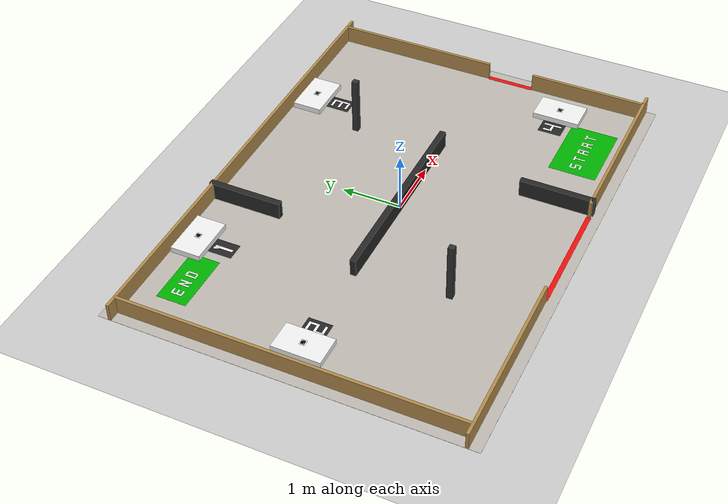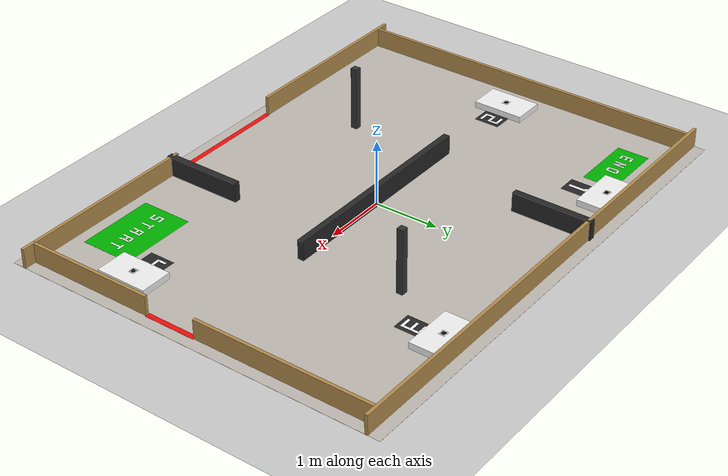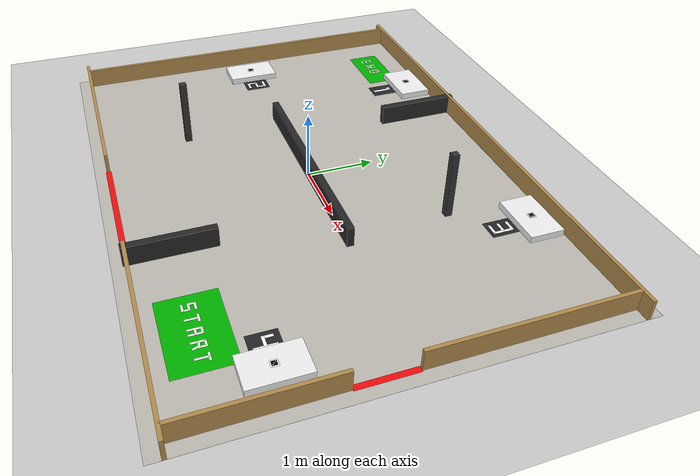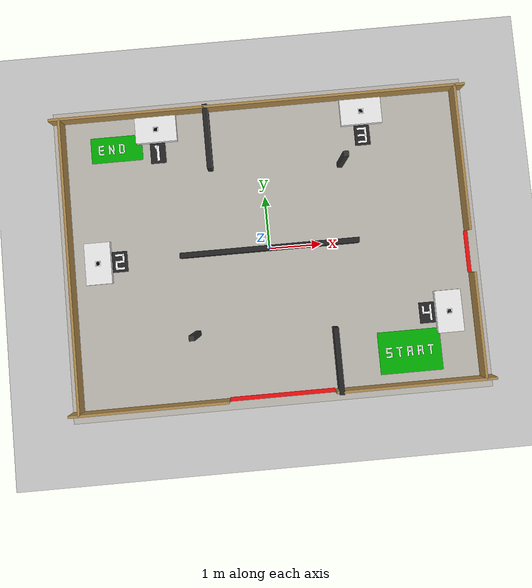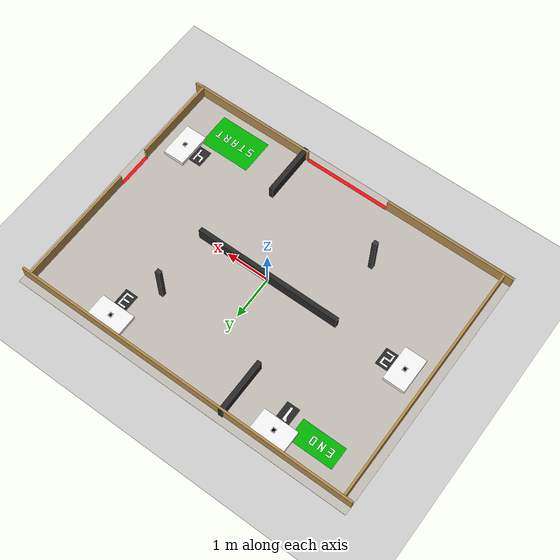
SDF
<?xml version="1.0" ?>
<sdf version="1.6">
  <world name="robocup_arena_mapping">

    <physics type="ode">
      <max_step_size>0.001</max_step_size>
      <real_time_factor>1</real_time_factor>
    </physics>

    <include><uri>model://sun</uri></include>
    <include><uri>model://ground_plane</uri></include>

    <!-- ===== FLOOR (8m x 6m) ===== -->
    <model name="arena_floor">
      <static>true</static>
      <pose>0 0 0.001 0 0 0</pose>
      <link name="link">
        <visual name="v"><geometry><box><size>8 6 0.002</size></box></geometry>
          <material><ambient>0.75 0.73 0.70 1</ambient><diffuse>0.75 0.73 0.70 1</diffuse></material>
        </visual>
      </link>
    </model>

    <!-- ===== OUTER WALLS (30cm high, 5cm thick) ===== -->
    <!-- Arena interior: x=[-3.775, 3.775], y=[-2.775, 2.775] -->

    <!-- North wall - full, y=2.8 -->
    <model name="wall_north">
      <static>true</static>
      <pose>0 2.8 0.15 0 0 0</pose>
      <link name="link">
        <collision name="c"><geometry><box><size>8 0.05 0.3</size></box></geometry></collision>
        <visual name="v"><geometry><box><size>8 0.05 0.3</size></box></geometry>
          <material><ambient>0.7 0.55 0.3 1</ambient><diffuse>0.7 0.55 0.3 1</diffuse></material>
        </visual>
      </link>
    </model>

    <!-- South wall - LEFT section (x=[-4.0, -1.0]) -->
    <model name="wall_south_left">
      <static>true</static>
      <pose>-2.5 -2.8 0.15 0 0 0</pose>
      <link name="link">
        <collision name="c"><geometry><box><size>3 0.05 0.3</size></box></geometry></collision>
        <visual name="v"><geometry><box><size>3 0.05 0.3</size></box></geometry>
          <material><ambient>0.7 0.55 0.3 1</ambient><diffuse>0.7 0.55 0.3 1</diffuse></material>
        </visual>
      </link>
    </model>

    <!-- South wall - RIGHT section (x=[1.0, 4.0]) -->
    <model name="wall_south_right">
      <static>true</static>
      <pose>2.5 -2.8 0.15 0 0 0</pose>
      <link name="link">
        <collision name="c"><geometry><box><size>3 0.05 0.3</size></box></geometry></collision>
        <visual name="v"><geometry><box><size>3 0.05 0.3</size></box></geometry>
          <material><ambient>0.7 0.55 0.3 1</ambient><diffuse>0.7 0.55 0.3 1</diffuse></material>
        </visual>
      </link>
    </model>

    <!-- Red tape marking south entry gap (visual only) -->
    <model name="red_tape_south">
      <static>true</static>
      <pose>0 -2.8 0.003 0 0 0</pose>
      <link name="link">
        <visual name="v"><geometry><box><size>2 0.08 0.003</size></box></geometry>
          <material><ambient>0.95 0.05 0.05 1</ambient><diffuse>0.95 0.05 0.05 1</diffuse></material>
        </visual>
      </link>
    </model>

    <!-- East wall - TOP section (y=[0.0, 2.8]) -->
    <model name="wall_east_top">
      <static>true</static>
      <pose>3.8 1.4 0.15 0 0 0</pose>
      <link name="link">
        <collision name="c"><geometry><box><size>0.05 2.8 0.3</size></box></geometry></collision>
        <visual name="v"><geometry><box><size>0.05 2.8 0.3</size></box></geometry>
          <material><ambient>0.7 0.55 0.3 1</ambient><diffuse>0.7 0.55 0.3 1</diffuse></material>
        </visual>
      </link>
    </model>

    <!-- East wall - BOTTOM section (y=[-2.8, -0.8]) -->
    <model name="wall_east_bottom">
      <static>true</static>
      <pose>3.8 -1.8 0.15 0 0 0</pose>
      <link name="link">
        <collision name="c"><geometry><box><size>0.05 2.0 0.3</size></box></geometry></collision>
        <visual name="v"><geometry><box><size>0.05 2.0 0.3</size></box></geometry>
          <material><ambient>0.7 0.55 0.3 1</ambient><diffuse>0.7 0.55 0.3 1</diffuse></material>
        </visual>
      </link>
    </model>

    <!-- Red tape marking east entry gap (visual only) -->
    <model name="red_tape_east">
      <static>true</static>
      <pose>3.8 -0.4 0.003 0 0 1.57</pose>
      <link name="link">
        <visual name="v"><geometry><box><size>0.8 0.08 0.003</size></box></geometry>
          <material><ambient>0.95 0.05 0.05 1</ambient><diffuse>0.95 0.05 0.05 1</diffuse></material>
        </visual>
      </link>
    </model>

    <!-- West wall - full, x=-3.8 -->
    <model name="wall_west">
      <static>true</static>
      <pose>-3.8 0 0.15 0 0 0</pose>
      <link name="link">
        <collision name="c"><geometry><box><size>0.05 5.6 0.3</size></box></geometry></collision>
        <visual name="v"><geometry><box><size>0.05 5.6 0.3</size></box></geometry>
          <material><ambient>0.7 0.55 0.3 1</ambient><diffuse>0.7 0.55 0.3 1</diffuse></material>
        </visual>
      </link>
    </model>

    <!-- ===== INNER WALLS - CENTRAL ISLAND LOOP =====
         Island wall at y=0 with a loop around it, plus two chicane stubs.
         All gaps are >= 1.26 m (robot + inflation). -->

    <model name="iwall_island">
      <static>true</static>
      <pose>0 0 0.15 0 0 0</pose>
      <link name="link">
        <collision name="c"><geometry><box><size>3.4 0.10 0.3</size></box></geometry></collision>
        <visual name="v"><geometry><box><size>3.4 0.10 0.3</size></box></geometry>
          <material><ambient>0.15 0.15 0.15 1</ambient><diffuse>0.15 0.15 0.15 1</diffuse></material>
        </visual>
      </link>
    </model>

    <model name="iwall_stub_n">
      <static>true</static>
      <pose>-1.0 2.225 0.15 0 0 0</pose>
      <link name="link">
        <collision name="c"><geometry><box><size>0.10 1.25 0.3</size></box></geometry></collision>
        <visual name="v"><geometry><box><size>0.10 1.25 0.3</size></box></geometry>
          <material><ambient>0.15 0.15 0.15 1</ambient><diffuse>0.15 0.15 0.15 1</diffuse></material>
        </visual>
      </link>
    </model>

    <model name="iwall_stub_s">
      <static>true</static>
      <pose>1.1 -2.225 0.15 0 0 0</pose>
      <link name="link">
        <collision name="c"><geometry><box><size>0.10 1.25 0.3</size></box></geometry></collision>
        <visual name="v"><geometry><box><size>0.10 1.25 0.3</size></box></geometry>
          <material><ambient>0.15 0.15 0.15 1</ambient><diffuse>0.15 0.15 0.15 1</diffuse></material>
        </visual>
      </link>
    </model>

    <!-- ===== WORKSTATION TABLES =====
         Against the outer walls, 0.1 m high. -->

    <!-- WS01 - against NORTH wall, left zone (north zone, west side) -->
    <!-- Approach from south: y < 2.25 (1.5m clearance from Wall A north face at y=0.75) -->
    <model name="table_ws01">
      <static>true</static>
      <pose>-2.0 2.5 0.05 0 0 0</pose>
      <link name="link">
        <collision name="c"><geometry><box><size>0.8 0.5 0.1</size></box></geometry></collision>
        <visual name="v"><geometry><box><size>0.8 0.5 0.1</size></box></geometry>
          <material><ambient>0.95 0.95 0.95 1</ambient><diffuse>0.95 0.95 0.95 1</diffuse></material>
        </visual>
      </link>
    </model>

    <!-- WS02 - against WEST wall, center zone (center zone, accessible via west gap of wall B) -->
    <!-- Approach from east: x > -3.05 -->
    <model name="table_ws02">
      <static>true</static>
      <pose>-3.3 0.0 0.05 0 0 0</pose>
      <link name="link">
        <collision name="c"><geometry><box><size>0.5 0.8 0.1</size></box></geometry></collision>
        <visual name="v"><geometry><box><size>0.5 0.8 0.1</size></box></geometry>
          <material><ambient>0.95 0.95 0.95 1</ambient><diffuse>0.95 0.95 0.95 1</diffuse></material>
        </visual>
      </link>
    </model>

    <!-- WS03 - against NORTH wall, right zone (north zone, east side, easiest access) -->
    <!-- Approach from south: direct access via east gap of wall A -->
    <model name="table_ws03">
      <static>true</static>
      <pose>2.0 2.5 0.05 0 0 0</pose>
      <link name="link">
        <collision name="c"><geometry><box><size>0.8 0.5 0.1</size></box></geometry></collision>
        <visual name="v"><geometry><box><size>0.8 0.5 0.1</size></box></geometry>
          <material><ambient>0.95 0.95 0.95 1</ambient><diffuse>0.95 0.95 0.95 1</diffuse></material>
        </visual>
      </link>
    </model>

    <!-- WS04 - against EAST wall, south zone (south zone east side, direct from start) -->
    <!-- Approach from west: x < 3.05 -->
    <model name="table_ws04">
      <static>true</static>
      <pose>3.3 -1.5 0.05 0 0 0</pose>
      <link name="link">
        <collision name="c"><geometry><box><size>0.5 0.8 0.1</size></box></geometry></collision>
        <visual name="v"><geometry><box><size>0.5 0.8 0.1</size></box></geometry>
          <material><ambient>0.95 0.95 0.95 1</ambient><diffuse>0.95 0.95 0.95 1</diffuse></material>
        </visual>
      </link>
    </model>

    <!-- ===== SLAM FEATURE PILLARS (thin, axis-aligned, help SLAM close loops) ===== -->
    <model name="pillar1">
      <static>true</static>
      <pose>-1.5 -1.5 0.5 0 0 0</pose>
      <link name="l">
        <collision name="c"><geometry><box><size>0.1 0.1 1.0</size></box></geometry></collision>
        <visual name="v"><geometry><box><size>0.1 0.1 1.0</size></box></geometry>
          <material><ambient>0.2 0.2 0.2 1</ambient><diffuse>0.2 0.2 0.2 1</diffuse></material>
        </visual>
      </link>
    </model>
    <model name="pillar2">
      <static>true</static>
      <pose>1.5 1.5 0.5 0 0 0</pose>
      <link name="l">
        <collision name="c"><geometry><box><size>0.1 0.1 1.0</size></box></geometry></collision>
        <visual name="v"><geometry><box><size>0.1 0.1 1.0</size></box></geometry>
          <material><ambient>0.2 0.2 0.2 1</ambient><diffuse>0.2 0.2 0.2 1</diffuse></material>
        </visual>
      </link>
    </model>

    <!-- ===== APRILTAGS ON TABLES (camera detection markers) ===== -->
    <!-- AprilTag WS01 - Tag ID 0 -->
    <model name="apriltag_ws01">
      <static>true</static>
      <pose>-2.0 2.5 0.105 0 0 0</pose>
      <link name="link">
        <visual name="border"><geometry><box><size>0.10 0.10 0.002</size></box></geometry>
          <material><ambient>1 1 1 1</ambient><diffuse>1 1 1 1</diffuse></material></visual>
        <visual name="inner"><pose>0 0 0.001 0 0 0</pose>
          <geometry><box><size>0.07 0.07 0.001</size></box></geometry>
          <material><ambient>0 0 0 1</ambient><diffuse>0 0 0 1</diffuse></material></visual>
        <visual name="code1"><pose>-0.02 0.02 0.002 0 0 0</pose>
          <geometry><box><size>0.012 0.012 0.001</size></box></geometry>
          <material><ambient>1 1 1 1</ambient><diffuse>1 1 1 1</diffuse></material></visual>
      </link>
    </model>

    <!-- AprilTag WS02 - Tag ID 1 -->
    <model name="apriltag_ws02">
      <static>true</static>
      <pose>-3.3 0.0 0.105 0 0 0</pose>
      <link name="link">
        <visual name="border"><geometry><box><size>0.10 0.10 0.002</size></box></geometry>
          <material><ambient>1 1 1 1</ambient><diffuse>1 1 1 1</diffuse></material></visual>
        <visual name="inner"><pose>0 0 0.001 0 0 0</pose>
          <geometry><box><size>0.07 0.07 0.001</size></box></geometry>
          <material><ambient>0 0 0 1</ambient><diffuse>0 0 0 1</diffuse></material></visual>
        <visual name="code1"><pose>0.02 0.02 0.002 0 0 0</pose>
          <geometry><box><size>0.012 0.012 0.001</size></box></geometry>
          <material><ambient>1 1 1 1</ambient><diffuse>1 1 1 1</diffuse></material></visual>
        <visual name="code2"><pose>-0.02 -0.02 0.002 0 0 0</pose>
          <geometry><box><size>0.012 0.012 0.001</size></box></geometry>
          <material><ambient>1 1 1 1</ambient><diffuse>1 1 1 1</diffuse></material></visual>
      </link>
    </model>

    <!-- AprilTag WS03 - Tag ID 2 -->
    <model name="apriltag_ws03">
      <static>true</static>
      <pose>2.0 2.5 0.105 0 0 0</pose>
      <link name="link">
        <visual name="border"><geometry><box><size>0.10 0.10 0.002</size></box></geometry>
          <material><ambient>1 1 1 1</ambient><diffuse>1 1 1 1</diffuse></material></visual>
        <visual name="inner"><pose>0 0 0.001 0 0 0</pose>
          <geometry><box><size>0.07 0.07 0.001</size></box></geometry>
          <material><ambient>0 0 0 1</ambient><diffuse>0 0 0 1</diffuse></material></visual>
        <visual name="code1"><pose>-0.02 -0.02 0.002 0 0 0</pose>
          <geometry><box><size>0.012 0.012 0.001</size></box></geometry>
          <material><ambient>1 1 1 1</ambient><diffuse>1 1 1 1</diffuse></material></visual>
        <visual name="code2"><pose>0.02 0.02 0.002 0 0 0</pose>
          <geometry><box><size>0.012 0.012 0.001</size></box></geometry>
          <material><ambient>1 1 1 1</ambient><diffuse>1 1 1 1</diffuse></material></visual>
        <visual name="code3"><pose>0.02 -0.02 0.002 0 0 0</pose>
          <geometry><box><size>0.012 0.012 0.001</size></box></geometry>
          <material><ambient>1 1 1 1</ambient><diffuse>1 1 1 1</diffuse></material></visual>
      </link>
    </model>

    <!-- AprilTag WS04 - Tag ID 3 -->
    <model name="apriltag_ws04">
      <static>true</static>
      <pose>3.3 -1.5 0.105 0 0 0</pose>
      <link name="link">
        <visual name="border"><geometry><box><size>0.10 0.10 0.002</size></box></geometry>
          <material><ambient>1 1 1 1</ambient><diffuse>1 1 1 1</diffuse></material></visual>
        <visual name="inner"><pose>0 0 0.001 0 0 0</pose>
          <geometry><box><size>0.07 0.07 0.001</size></box></geometry>
          <material><ambient>0 0 0 1</ambient><diffuse>0 0 0 1</diffuse></material></visual>
        <visual name="code1"><pose>0.02 -0.02 0.002 0 0 0</pose>
          <geometry><box><size>0.012 0.012 0.001</size></box></geometry>
          <material><ambient>1 1 1 1</ambient><diffuse>1 1 1 1</diffuse></material></visual>
        <visual name="code2"><pose>-0.02 0.02 0.002 0 0 0</pose>
          <geometry><box><size>0.012 0.012 0.001</size></box></geometry>
          <material><ambient>1 1 1 1</ambient><diffuse>1 1 1 1</diffuse></material></visual>
        <visual name="code3"><pose>0.0 0.0 0.002 0 0 0</pose>
          <geometry><box><size>0.012 0.012 0.001</size></box></geometry>
          <material><ambient>1 1 1 1</ambient><diffuse>1 1 1 1</diffuse></material></visual>
      </link>
    </model>

    <!-- ===== FLOOR STATION NUMBERS ===== -->
    <!-- Number 1 near WS01 -->
    <model name="num1">
      <static>true</static>
      <pose>-2.0 2.05 0.003 0 0 0</pose>
      <link name="link">
        <visual name="bg"><geometry><box><size>0.3 0.4 0.002</size></box></geometry>
          <material><ambient>0.15 0.15 0.15 1</ambient><diffuse>0.15 0.15 0.15 1</diffuse></material></visual>
        <visual name="v1"><pose>0 0 0.001 0 0 0</pose>
          <geometry><box><size>0.05 0.3 0.001</size></box></geometry>
          <material><ambient>1 1 1 1</ambient><diffuse>1 1 1 1</diffuse></material></visual>
        <visual name="v2"><pose>-0.03 0.12 0.001 0 0 0.5</pose>
          <geometry><box><size>0.05 0.08 0.001</size></box></geometry>
          <material><ambient>1 1 1 1</ambient><diffuse>1 1 1 1</diffuse></material></visual>
      </link>
    </model>

    <!-- Number 2 near WS02 -->
    <model name="num2">
      <static>true</static>
      <pose>-2.9 0.0 0.003 0 0 0</pose>
      <link name="link">
        <visual name="bg"><geometry><box><size>0.3 0.4 0.002</size></box></geometry>
          <material><ambient>0.15 0.15 0.15 1</ambient><diffuse>0.15 0.15 0.15 1</diffuse></material></visual>
        <visual name="top"><pose>0 0.13 0.001 0 0 0</pose>
          <geometry><box><size>0.18 0.04 0.001</size></box></geometry>
          <material><ambient>1 1 1 1</ambient><diffuse>1 1 1 1</diffuse></material></visual>
        <visual name="mid"><pose>0 0 0.001 0 0 0</pose>
          <geometry><box><size>0.18 0.04 0.001</size></box></geometry>
          <material><ambient>1 1 1 1</ambient><diffuse>1 1 1 1</diffuse></material></visual>
        <visual name="bot"><pose>0 -0.13 0.001 0 0 0</pose>
          <geometry><box><size>0.18 0.04 0.001</size></box></geometry>
          <material><ambient>1 1 1 1</ambient><diffuse>1 1 1 1</diffuse></material></visual>
        <visual name="rt"><pose>0.07 0.065 0.001 0 0 0</pose>
          <geometry><box><size>0.04 0.13 0.001</size></box></geometry>
          <material><ambient>1 1 1 1</ambient><diffuse>1 1 1 1</diffuse></material></visual>
        <visual name="lb"><pose>-0.07 -0.065 0.001 0 0 0</pose>
          <geometry><box><size>0.04 0.13 0.001</size></box></geometry>
          <material><ambient>1 1 1 1</ambient><diffuse>1 1 1 1</diffuse></material></visual>
      </link>
    </model>

    <!-- Number 3 near WS03 -->
    <model name="num3">
      <static>true</static>
      <pose>2.0 2.05 0.003 0 0 0</pose>
      <link name="link">
        <visual name="bg"><geometry><box><size>0.3 0.4 0.002</size></box></geometry>
          <material><ambient>0.15 0.15 0.15 1</ambient><diffuse>0.15 0.15 0.15 1</diffuse></material></visual>
        <visual name="top"><pose>0 0.13 0.001 0 0 0</pose>
          <geometry><box><size>0.18 0.04 0.001</size></box></geometry>
          <material><ambient>1 1 1 1</ambient><diffuse>1 1 1 1</diffuse></material></visual>
        <visual name="mid"><pose>0 0 0.001 0 0 0</pose>
          <geometry><box><size>0.18 0.04 0.001</size></box></geometry>
          <material><ambient>1 1 1 1</ambient><diffuse>1 1 1 1</diffuse></material></visual>
        <visual name="bot"><pose>0 -0.13 0.001 0 0 0</pose>
          <geometry><box><size>0.18 0.04 0.001</size></box></geometry>
          <material><ambient>1 1 1 1</ambient><diffuse>1 1 1 1</diffuse></material></visual>
        <visual name="rt"><pose>0.07 0.065 0.001 0 0 0</pose>
          <geometry><box><size>0.04 0.13 0.001</size></box></geometry>
          <material><ambient>1 1 1 1</ambient><diffuse>1 1 1 1</diffuse></material></visual>
        <visual name="rb"><pose>0.07 -0.065 0.001 0 0 0</pose>
          <geometry><box><size>0.04 0.13 0.001</size></box></geometry>
          <material><ambient>1 1 1 1</ambient><diffuse>1 1 1 1</diffuse></material></visual>
      </link>
    </model>

    <!-- Number 4 near WS04 -->
    <model name="num4">
      <static>true</static>
      <pose>2.9 -1.5 0.003 0 0 0</pose>
      <link name="link">
        <visual name="bg"><geometry><box><size>0.3 0.4 0.002</size></box></geometry>
          <material><ambient>0.15 0.15 0.15 1</ambient><diffuse>0.15 0.15 0.15 1</diffuse></material></visual>
        <visual name="lt"><pose>-0.07 0.065 0.001 0 0 0</pose>
          <geometry><box><size>0.04 0.13 0.001</size></box></geometry>
          <material><ambient>1 1 1 1</ambient><diffuse>1 1 1 1</diffuse></material></visual>
        <visual name="mid"><pose>0 0 0.001 0 0 0</pose>
          <geometry><box><size>0.18 0.04 0.001</size></box></geometry>
          <material><ambient>1 1 1 1</ambient><diffuse>1 1 1 1</diffuse></material></visual>
        <visual name="rf"><pose>0.07 0 0.001 0 0 0</pose>
          <geometry><box><size>0.04 0.3 0.001</size></box></geometry>
          <material><ambient>1 1 1 1</ambient><diffuse>1 1 1 1</diffuse></material></visual>
      </link>
    </model>

    <!-- ===== START AREA (green, south zone east side, robot spawn) ===== -->
    <model name="start_area">
      <static>true</static>
      <pose>2.5 -2.2 0.002 0 0 0</pose>
      <link name="link">
        <visual name="bg"><geometry><box><size>1.2 0.8 0.002</size></box></geometry>
          <material><ambient>0 0.7 0 1</ambient><diffuse>0 0.7 0 1</diffuse></material></visual>
      </link>
    </model>
    <model name="start_S"><static>true</static><pose>2.1 -2.2 0.004 0 0 0</pose><link name="l">
      <visual name="top"><pose>0 0.08 0 0 0 0</pose><geometry><box><size>0.12 0.03 0.001</size></box></geometry><material><ambient>1 1 1 1</ambient><diffuse>1 1 1 1</diffuse></material></visual>
      <visual name="mid"><pose>0 0 0 0 0 0</pose><geometry><box><size>0.12 0.03 0.001</size></box></geometry><material><ambient>1 1 1 1</ambient><diffuse>1 1 1 1</diffuse></material></visual>
      <visual name="bot"><pose>0 -0.08 0 0 0 0</pose><geometry><box><size>0.12 0.03 0.001</size></box></geometry><material><ambient>1 1 1 1</ambient><diffuse>1 1 1 1</diffuse></material></visual>
      <visual name="lt"><pose>-0.045 0.04 0 0 0 0</pose><geometry><box><size>0.03 0.08 0.001</size></box></geometry><material><ambient>1 1 1 1</ambient><diffuse>1 1 1 1</diffuse></material></visual>
      <visual name="rb"><pose>0.045 -0.04 0 0 0 0</pose><geometry><box><size>0.03 0.08 0.001</size></box></geometry><material><ambient>1 1 1 1</ambient><diffuse>1 1 1 1</diffuse></material></visual>
    </link></model>
    <model name="start_T"><static>true</static><pose>2.3 -2.2 0.004 0 0 0</pose><link name="l">
      <visual name="top"><pose>0 0.08 0 0 0 0</pose><geometry><box><size>0.12 0.03 0.001</size></box></geometry><material><ambient>1 1 1 1</ambient><diffuse>1 1 1 1</diffuse></material></visual>
      <visual name="stem"><pose>0 0 0 0 0 0</pose><geometry><box><size>0.03 0.19 0.001</size></box></geometry><material><ambient>1 1 1 1</ambient><diffuse>1 1 1 1</diffuse></material></visual>
    </link></model>
    <model name="start_A"><static>true</static><pose>2.5 -2.2 0.004 0 0 0</pose><link name="l">
      <visual name="left"><pose>-0.04 0 0 0 0 0</pose><geometry><box><size>0.03 0.19 0.001</size></box></geometry><material><ambient>1 1 1 1</ambient><diffuse>1 1 1 1</diffuse></material></visual>
      <visual name="right"><pose>0.04 0 0 0 0 0</pose><geometry><box><size>0.03 0.19 0.001</size></box></geometry><material><ambient>1 1 1 1</ambient><diffuse>1 1 1 1</diffuse></material></visual>
      <visual name="top"><pose>0 0.08 0 0 0 0</pose><geometry><box><size>0.11 0.03 0.001</size></box></geometry><material><ambient>1 1 1 1</ambient><diffuse>1 1 1 1</diffuse></material></visual>
      <visual name="mid"><pose>0 0 0 0 0 0</pose><geometry><box><size>0.11 0.03 0.001</size></box></geometry><material><ambient>1 1 1 1</ambient><diffuse>1 1 1 1</diffuse></material></visual>
    </link></model>
    <model name="start_R"><static>true</static><pose>2.7 -2.2 0.004 0 0 0</pose><link name="l">
      <visual name="stem"><pose>-0.04 0 0 0 0 0</pose><geometry><box><size>0.03 0.19 0.001</size></box></geometry><material><ambient>1 1 1 1</ambient><diffuse>1 1 1 1</diffuse></material></visual>
      <visual name="top"><pose>0 0.08 0 0 0 0</pose><geometry><box><size>0.11 0.03 0.001</size></box></geometry><material><ambient>1 1 1 1</ambient><diffuse>1 1 1 1</diffuse></material></visual>
      <visual name="mid"><pose>0 0 0 0 0 0</pose><geometry><box><size>0.11 0.03 0.001</size></box></geometry><material><ambient>1 1 1 1</ambient><diffuse>1 1 1 1</diffuse></material></visual>
      <visual name="rt"><pose>0.04 0.04 0 0 0 0</pose><geometry><box><size>0.03 0.08 0.001</size></box></geometry><material><ambient>1 1 1 1</ambient><diffuse>1 1 1 1</diffuse></material></visual>
      <visual name="leg"><pose>0.04 -0.04 0 0 0 0.3</pose><geometry><box><size>0.03 0.1 0.001</size></box></geometry><material><ambient>1 1 1 1</ambient><diffuse>1 1 1 1</diffuse></material></visual>
    </link></model>
    <model name="start_T2"><static>true</static><pose>2.9 -2.2 0.004 0 0 0</pose><link name="l">
      <visual name="top"><pose>0 0.08 0 0 0 0</pose><geometry><box><size>0.12 0.03 0.001</size></box></geometry><material><ambient>1 1 1 1</ambient><diffuse>1 1 1 1</diffuse></material></visual>
      <visual name="stem"><pose>0 0 0 0 0 0</pose><geometry><box><size>0.03 0.19 0.001</size></box></geometry><material><ambient>1 1 1 1</ambient><diffuse>1 1 1 1</diffuse></material></visual>
    </link></model>

    <!-- ===== GOAL/END AREA (green, north zone west side, near WS01) ===== -->
    <model name="goal_area">
      <static>true</static>
      <pose>-2.8 2.2 0.002 0 0 0</pose>
      <link name="link">
        <visual name="bg"><geometry><box><size>1.0 0.5 0.002</size></box></geometry>
          <material><ambient>0 0.7 0 1</ambient><diffuse>0 0.7 0 1</diffuse></material></visual>
      </link>
    </model>
    <model name="end_E"><static>true</static><pose>-3.1 2.2 0.004 0 0 0</pose><link name="l">
      <visual name="stem"><pose>-0.04 0 0 0 0 0</pose><geometry><box><size>0.03 0.19 0.001</size></box></geometry><material><ambient>1 1 1 1</ambient><diffuse>1 1 1 1</diffuse></material></visual>
      <visual name="top"><pose>0 0.08 0 0 0 0</pose><geometry><box><size>0.11 0.03 0.001</size></box></geometry><material><ambient>1 1 1 1</ambient><diffuse>1 1 1 1</diffuse></material></visual>
      <visual name="mid"><pose>0 0 0 0 0 0</pose><geometry><box><size>0.11 0.03 0.001</size></box></geometry><material><ambient>1 1 1 1</ambient><diffuse>1 1 1 1</diffuse></material></visual>
      <visual name="bot"><pose>0 -0.08 0 0 0 0</pose><geometry><box><size>0.11 0.03 0.001</size></box></geometry><material><ambient>1 1 1 1</ambient><diffuse>1 1 1 1</diffuse></material></visual>
    </link></model>
    <model name="end_N"><static>true</static><pose>-2.9 2.2 0.004 0 0 0</pose><link name="l">
      <visual name="left"><pose>-0.04 0 0 0 0 0</pose><geometry><box><size>0.03 0.19 0.001</size></box></geometry><material><ambient>1 1 1 1</ambient><diffuse>1 1 1 1</diffuse></material></visual>
      <visual name="right"><pose>0.04 0 0 0 0 0</pose><geometry><box><size>0.03 0.19 0.001</size></box></geometry><material><ambient>1 1 1 1</ambient><diffuse>1 1 1 1</diffuse></material></visual>
      <visual name="diag"><pose>0 0 0 0 0 0.5</pose><geometry><box><size>0.03 0.2 0.001</size></box></geometry><material><ambient>1 1 1 1</ambient><diffuse>1 1 1 1</diffuse></material></visual>
    </link></model>
    <model name="end_D"><static>true</static><pose>-2.7 2.2 0.004 0 0 0</pose><link name="l">
      <visual name="stem"><pose>-0.04 0 0 0 0 0</pose><geometry><box><size>0.03 0.19 0.001</size></box></geometry><material><ambient>1 1 1 1</ambient><diffuse>1 1 1 1</diffuse></material></visual>
      <visual name="top"><pose>0 0.08 0 0 0 0</pose><geometry><box><size>0.08 0.03 0.001</size></box></geometry><material><ambient>1 1 1 1</ambient><diffuse>1 1 1 1</diffuse></material></visual>
      <visual name="bot"><pose>0 -0.08 0 0 0 0</pose><geometry><box><size>0.08 0.03 0.001</size></box></geometry><material><ambient>1 1 1 1</ambient><diffuse>1 1 1 1</diffuse></material></visual>
      <visual name="right"><pose>0.04 0 0 0 0 0</pose><geometry><box><size>0.03 0.16 0.001</size></box></geometry><material><ambient>1 1 1 1</ambient><diffuse>1 1 1 1</diffuse></material></visual>
    </link></model>

  </world>
</sdf>
